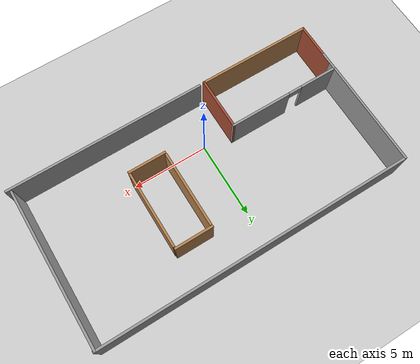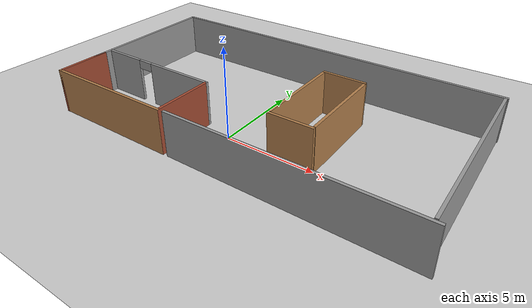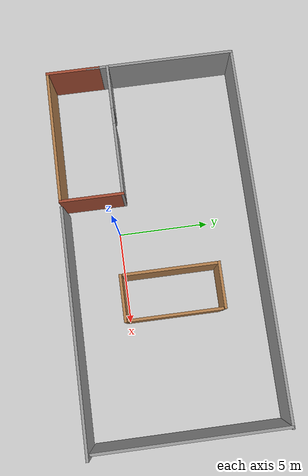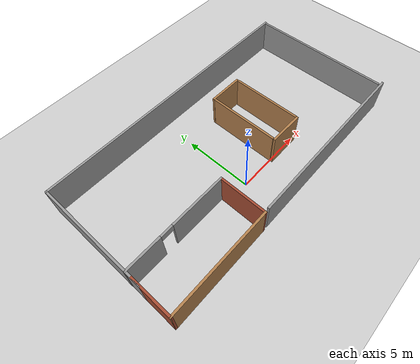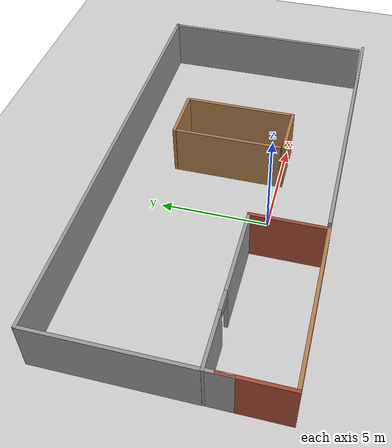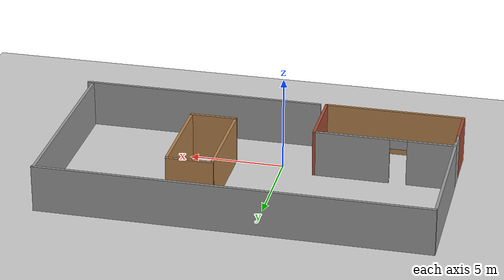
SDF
<sdf version="1.7">
 <world name="default">
  <light name="sun" type="directional">
   <pose>0 0 10 0 -0 0</pose>
   <diffuse>0.8 0.8 0.8 1</diffuse>
   <specular>0.2 0.2 0.2 1</specular>
   <attenuation>
    <range>1000</range>
    <constant>0.9</constant>
    <linear>0.01</linear>
    <quadratic>0.001</quadratic>
   </attenuation>
   <direction>-0.5 0.1 -0.9</direction>
   <spot><inner_angle>0</inner_angle><outer_angle>0</outer_angle><falloff>0</falloff></spot>
  </light>
  <gravity>0 0 -9.8</gravity>
  <magnetic_field>6e-06 2.3e-05 -4.2e-05</magnetic_field>
  <atmosphere type="adiabatic"/>
  <physics type="ode">
   <max_step_size>0.001</max_step_size>
   <real_time_factor>1</real_time_factor>
   <real_time_update_rate>1000</real_time_update_rate>
  </physics>
  <scene><ambient>0.4 0.4 0.4 1</ambient><background>0.7 0.7 0.7 1</background><shadows>1</shadows></scene>
  <spherical_coordinates>
   <surface_model>EARTH_WGS84</surface_model>
   <latitude_deg>0</latitude_deg>
   <longitude_deg>0</longitude_deg>
   <elevation>0</elevation>
   <heading_deg>0</heading_deg>
  </spherical_coordinates>
  <audio><device>default</device></audio>
  <model name="ground_plane">
   <static>1</static>
   <link name="link">
    <collision name="collision">
     <geometry><plane><normal>0 0 1</normal><size>100 100</size></plane></geometry>
     <surface><friction><ode><mu>100</mu><mu2>50</mu2></ode></friction></surface>
    </collision>
    <visual name="visual">
     <cast_shadows>0</cast_shadows>
     <geometry><plane><normal>0 0 1</normal><size>100 100</size></plane></geometry>
     <material>
      <script><uri>file://media/materials/scripts/gazebo.material</uri><name>Gazebo/Grey</name></script>
     </material>
    </visual>
   </link>
  </model>
  <model name="mini_world.world">
   <link name="Wall_1">
    <pose>2.34987 7.59073 0 0 -0 1.5708</pose>
    <visual name="Wall_1_Visual">
     <pose>0 0 1.25 0 -0 0</pose>
     <geometry><box><size>5 0.15 2.5</size></box></geometry>
     <material>
      <script><uri>file://media/materials/scripts/gazebo.material</uri><name>Gazebo/Wood</name></script>
      <ambient>1 1 1 1</ambient>
      <shader type="pixel"/>
     </material>
     <meta><layer>0</layer></meta>
    </visual>
    <collision name="Wall_1_Collision">
     <pose>0 0 1.25 0 -0 0</pose>
     <geometry><box><size>5 0.15 2.5</size></box></geometry>
     <surface>
      <friction>
       <ode><mu>1</mu><mu2>1</mu2><fdir1>0 0 0</fdir1><slip1>0</slip1><slip2>0</slip2></ode>
       <torsional>
        <coefficient>1</coefficient>
        <patch_radius>0</patch_radius>
        <surface_radius>0</surface_radius>
        <use_patch_radius>1</use_patch_radius>
        <ode><slip>0</slip></ode>
       </torsional>
      </friction>
      <bounce><restitution_coefficient>0</restitution_coefficient><threshold>1e+06</threshold></bounce>
      <contact>
       <collide_without_contact>0</collide_without_contact>
       <collide_without_contact_bitmask>1</collide_without_contact_bitmask>
       <collide_bitmask>1</collide_bitmask>
       <ode>
        <soft_cfm>0</soft_cfm>
        <soft_erp>0.2</soft_erp>
        <kp>1e+13</kp>
        <kd>1</kd>
        <max_vel>0.01</max_vel>
        <min_depth>0</min_depth>
       </ode>
       <bullet>
        <split_impulse>1</split_impulse>
        <split_impulse_penetration_threshold>-0.01</split_impulse_penetration_threshold>
        <soft_cfm>0</soft_cfm>
        <soft_erp>0.2</soft_erp>
        <kp>1e+13</kp>
        <kd>1</kd>
       </bullet>
      </contact>
     </surface>
    </collision>
   </link>
   <link name="Wall_2">
    <pose>1.16158 4.99653 0 0 -0 3.14159</pose>
    <visual name="Wall_2_Visual">
     <pose>0 0 1.25 0 -0 0</pose>
     <geometry><box><size>2.5 0.15 2.5</size></box></geometry>
     <material>
      <script><uri>file://media/materials/scripts/gazebo.material</uri><name>Gazebo/Wood</name></script>
      <ambient>1 1 1 1</ambient>
      <shader type="pixel"/>
     </material>
     <meta><layer>0</layer></meta>
    </visual>
    <collision name="Wall_2_Collision">
     <pose>0 0 1.25 0 -0 0</pose>
     <geometry><box><size>2.5 0.15 2.5</size></box></geometry>
     <surface>
      <friction>
       <ode><mu>1</mu><mu2>1</mu2><fdir1>0 0 0</fdir1><slip1>0</slip1><slip2>0</slip2></ode>
       <torsional>
        <coefficient>1</coefficient>
        <patch_radius>0</patch_radius>
        <surface_radius>0</surface_radius>
        <use_patch_radius>1</use_patch_radius>
        <ode><slip>0</slip></ode>
       </torsional>
      </friction>
      <bounce><restitution_coefficient>0</restitution_coefficient><threshold>1e+06</threshold></bounce>
      <contact>
       <collide_without_contact>0</collide_without_contact>
       <collide_without_contact_bitmask>1</collide_without_contact_bitmask>
       <collide_bitmask>1</collide_bitmask>
       <ode>
        <soft_cfm>0</soft_cfm>
        <soft_erp>0.2</soft_erp>
        <kp>1e+13</kp>
        <kd>1</kd>
        <max_vel>0.01</max_vel>
        <min_depth>0</min_depth>
       </ode>
       <bullet>
        <split_impulse>1</split_impulse>
        <split_impulse_penetration_threshold>-0.01</split_impulse_penetration_threshold>
        <soft_cfm>0</soft_cfm>
        <soft_erp>0.2</soft_erp>
        <kp>1e+13</kp>
        <kd>1</kd>
       </bullet>
      </contact>
     </surface>
    </collision>
   </link>
   <link name="Wall_2_clone">
    <pose>1.14067 10.1966 0 0 -0 3.14159</pose>
    <visual name="Wall_2_Visual">
     <pose>0 0 1.25 0 -0 0</pose>
     <geometry><box><size>2.5 0.15 2.5</size></box></geometry>
     <material>
      <script><uri>file://media/materials/scripts/gazebo.material</uri><name>Gazebo/Wood</name></script>
      <ambient>1 1 1 1</ambient>
      <shader type="pixel"/>
     </material>
     <meta><layer>0</layer></meta>
    </visual>
    <collision name="Wall_2_Collision">
     <pose>0 0 1.25 0 -0 0</pose>
     <geometry><box><size>2.5 0.15 2.5</size></box></geometry>
     <surface>
      <friction>
       <ode><mu>1</mu><mu2>1</mu2><fdir1>0 0 0</fdir1><slip1>0</slip1><slip2>0</slip2></ode>
       <torsional>
        <coefficient>1</coefficient>
        <patch_radius>0</patch_radius>
        <surface_radius>0</surface_radius>
        <use_patch_radius>1</use_patch_radius>
        <ode><slip>0</slip></ode>
       </torsional>
      </friction>
      <bounce><restitution_coefficient>0</restitution_coefficient><threshold>1e+06</threshold></bounce>
      <contact>
       <collide_without_contact>0</collide_without_contact>
       <collide_without_contact_bitmask>1</collide_without_contact_bitmask>
       <collide_bitmask>1</collide_bitmask>
       <ode>
        <soft_cfm>0</soft_cfm>
        <soft_erp>0.2</soft_erp>
        <kp>1e+13</kp>
        <kd>1</kd>
        <max_vel>0.01</max_vel>
        <min_depth>0</min_depth>
       </ode>
       <bullet>
        <split_impulse>1</split_impulse>
        <split_impulse_penetration_threshold>-0.01</split_impulse_penetration_threshold>
        <soft_cfm>0</soft_cfm>
        <soft_erp>0.2</soft_erp>
        <kp>1e+13</kp>
        <kd>1</kd>
       </bullet>
      </contact>
     </surface>
    </collision>
   </link>
   <link name="Wall_3">
    <pose>-0.034588 7.60858 0 0 0 -1.5708</pose>
    <visual name="Wall_3_Visual">
     <pose>0 0 1.25 0 -0 0</pose>
     <geometry><box><size>5 0.15 2.5</size></box></geometry>
     <material>
      <script><uri>file://media/materials/scripts/gazebo.material</uri><name>Gazebo/Wood</name></script>
      <ambient>1 1 1 1</ambient>
      <shader type="pixel"/>
     </material>
     <meta><layer>0</layer></meta>
    </visual>
    <collision name="Wall_3_Collision">
     <pose>0 0 1.25 0 -0 0</pose>
     <geometry><box><size>5 0.15 2.5</size></box></geometry>
     <surface>
      <friction>
       <ode><mu>1</mu><mu2>1</mu2><fdir1>0 0 0</fdir1><slip1>0</slip1><slip2>0</slip2></ode>
       <torsional>
        <coefficient>1</coefficient>
        <patch_radius>0</patch_radius>
        <surface_radius>0</surface_radius>
        <use_patch_radius>1</use_patch_radius>
        <ode><slip>0</slip></ode>
       </torsional>
      </friction>
      <bounce><restitution_coefficient>0</restitution_coefficient><threshold>1e+06</threshold></bounce>
      <contact>
       <collide_without_contact>0</collide_without_contact>
       <collide_without_contact_bitmask>1</collide_without_contact_bitmask>
       <collide_bitmask>1</collide_bitmask>
       <ode>
        <soft_cfm>0</soft_cfm>
        <soft_erp>0.2</soft_erp>
        <kp>1e+13</kp>
        <kd>1</kd>
        <max_vel>0.01</max_vel>
        <min_depth>0</min_depth>
       </ode>
       <bullet>
        <split_impulse>1</split_impulse>
        <split_impulse_penetration_threshold>-0.01</split_impulse_penetration_threshold>
        <soft_cfm>0</soft_cfm>
        <soft_erp>0.2</soft_erp>
        <kp>1e+13</kp>
        <kd>1</kd>
       </bullet>
      </contact>
     </surface>
    </collision>
   </link>
   <link name="Wall_31">
    <pose>-1.54186 12.6226 0 0 -0 0</pose>
    <inertial>
     <mass>1</mass>
     <inertia><ixx>1</ixx><ixy>0</ixy><ixz>0</ixz><iyy>1</iyy><iyz>0</iyz><izz>1</izz></inertia>
    </inertial>
    <visual name="Wall_31_Visual">
     <pose>0 0 1.25 0 -0 0</pose>
     <geometry><box><size>20.5 0.15 2.5</size></box></geometry>
     <material>
      <script><uri>file://media/materials/scripts/gazebo.material</uri><name>Gazebo/Grey</name></script>
      <ambient>1 1 1 1</ambient>
      <shader type="pixel"><normal_map>__default__</normal_map></shader>
      <diffuse>0.7 0.7 0.7 1</diffuse>
      <specular>0.01 0.01 0.01 1</specular>
      <emissive>0 0 0 1</emissive>
     </material>
     <meta><layer>0</layer></meta>
    </visual>
    <collision name="Wall_31_Collision">
     <pose>0 0 1.25 0 -0 0</pose>
     <geometry><box><size>20.5 0.15 2.5</size></box></geometry>
     <surface>
      <friction>
       <ode><mu>1</mu><mu2>1</mu2><fdir1>0 0 0</fdir1><slip1>0</slip1><slip2>0</slip2></ode>
       <torsional>
        <coefficient>1</coefficient>
        <patch_radius>0</patch_radius>
        <surface_radius>0</surface_radius>
        <use_patch_radius>1</use_patch_radius>
        <ode><slip>0</slip></ode>
       </torsional>
      </friction>
      <bounce><restitution_coefficient>0</restitution_coefficient><threshold>1e+06</threshold></bounce>
      <contact>
       <collide_without_contact>0</collide_without_contact>
       <collide_without_contact_bitmask>1</collide_without_contact_bitmask>
       <collide_bitmask>1</collide_bitmask>
       <ode>
        <soft_cfm>0</soft_cfm>
        <soft_erp>0.2</soft_erp>
        <kp>1e+13</kp>
        <kd>1</kd>
        <max_vel>0.01</max_vel>
        <min_depth>0</min_depth>
       </ode>
       <bullet>
        <split_impulse>1</split_impulse>
        <split_impulse_penetration_threshold>-0.01</split_impulse_penetration_threshold>
        <soft_cfm>0</soft_cfm>
        <soft_erp>0.2</soft_erp>
        <kp>1e+13</kp>
        <kd>1</kd>
       </bullet>
      </contact>
     </surface>
    </collision>
   </link>
   <link name="Wall_31_clone">
    <pose>2.41702 2.32533 0 0 -0 0</pose>
    <inertial>
     <mass>1</mass>
     <inertia><ixx>1</ixx><ixy>0</ixy><ixz>0</ixz><iyy>1</iyy><iyz>0</iyz><izz>1</izz></inertia>
    </inertial>
    <visual name="Wall_31_Visual">
     <pose>0 0 1.25 0 -0 0</pose>
     <geometry><box><size>13 0.15 2.5</size></box></geometry>
     <material>
      <script><uri>file://media/materials/scripts/gazebo.material</uri><name>Gazebo/Grey</name></script>
      <ambient>1 1 1 1</ambient>
      <shader type="pixel"><normal_map>__default__</normal_map></shader>
      <diffuse>0.7 0.7 0.7 1</diffuse>
      <specular>0.01 0.01 0.01 1</specular>
      <emissive>0 0 0 1</emissive>
     </material>
     <meta><layer>0</layer></meta>
    </visual>
    <collision name="Wall_31_Collision">
     <pose>0 0 1.25 0 -0 0</pose>
     <geometry><box><size>13 0.15 2.5</size></box></geometry>
     <surface>
      <friction>
       <ode><mu>1</mu><mu2>1</mu2><fdir1>0 0 0</fdir1><slip1>0</slip1><slip2>0</slip2></ode>
       <torsional>
        <coefficient>1</coefficient>
        <patch_radius>0</patch_radius>
        <surface_radius>0</surface_radius>
        <use_patch_radius>1</use_patch_radius>
        <ode><slip>0</slip></ode>
       </torsional>
      </friction>
      <bounce><restitution_coefficient>0</restitution_coefficient><threshold>1e+06</threshold></bounce>
      <contact>
       <collide_without_contact>0</collide_without_contact>
       <collide_without_contact_bitmask>1</collide_without_contact_bitmask>
       <collide_bitmask>1</collide_bitmask>
       <ode>
        <soft_cfm>0</soft_cfm>
        <soft_erp>0.2</soft_erp>
        <kp>1e+13</kp>
        <kd>1</kd>
        <max_vel>0.01</max_vel>
        <min_depth>0</min_depth>
       </ode>
       <bullet>
        <split_impulse>1</split_impulse>
        <split_impulse_penetration_threshold>-0.01</split_impulse_penetration_threshold>
        <soft_cfm>0</soft_cfm>
        <soft_erp>0.2</soft_erp>
        <kp>1e+13</kp>
        <kd>1</kd>
       </bullet>
      </contact>
     </surface>
    </collision>
   </link>
   <link name="Wall_32">
    <pose>-11.7375 9.17611 0 0 -0 1.5708</pose>
    <inertial>
     <mass>1</mass>
     <inertia><ixx>1</ixx><ixy>0</ixy><ixz>0</ixz><iyy>1</iyy><iyz>0</iyz><izz>1</izz></inertia>
    </inertial>
    <visual name="Wall_32_Visual">
     <pose>0 0 1.25 0 -0 0</pose>
     <geometry><box><size>7 0.15 2.5</size></box></geometry>
     <material>
      <script><uri>file://media/materials/scripts/gazebo.material</uri><name>Gazebo/Grey</name></script>
      <ambient>1 1 1 1</ambient>
      <shader type="pixel"><normal_map>__default__</normal_map></shader>
      <diffuse>0.7 0.7 0.7 1</diffuse>
      <specular>0.01 0.01 0.01 1</specular>
      <emissive>0 0 0 1</emissive>
     </material>
     <meta><layer>0</layer></meta>
    </visual>
    <collision name="Wall_32_Collision">
     <pose>0 0 1.25 0 -0 0</pose>
     <geometry><box><size>7 0.15 2.5</size></box></geometry>
     <surface>
      <friction>
       <ode><mu>1</mu><mu2>1</mu2><fdir1>0 0 0</fdir1><slip1>0</slip1><slip2>0</slip2></ode>
       <torsional>
        <coefficient>1</coefficient>
        <patch_radius>0</patch_radius>
        <surface_radius>0</surface_radius>
        <use_patch_radius>1</use_patch_radius>
        <ode><slip>0</slip></ode>
       </torsional>
      </friction>
      <bounce><restitution_coefficient>0</restitution_coefficient><threshold>1e+06</threshold></bounce>
      <contact>
       <collide_without_contact>0</collide_without_contact>
       <collide_without_contact_bitmask>1</collide_without_contact_bitmask>
       <collide_bitmask>1</collide_bitmask>
       <ode>
        <soft_cfm>0</soft_cfm>
        <soft_erp>0.2</soft_erp>
        <kp>1e+13</kp>
        <kd>1</kd>
        <max_vel>0.01</max_vel>
        <min_depth>0</min_depth>
       </ode>
       <bullet>
        <split_impulse>1</split_impulse>
        <split_impulse_penetration_threshold>-0.01</split_impulse_penetration_threshold>
        <soft_cfm>0</soft_cfm>
        <soft_erp>0.2</soft_erp>
        <kp>1e+13</kp>
        <kd>1</kd>
       </bullet>
      </contact>
     </surface>
    </collision>
   </link>
   <link name="Wall_32_clone">
    <pose>8.58939 7.56045 0 0 -0 1.5708</pose>
    <inertial>
     <mass>1</mass>
     <inertia><ixx>1</ixx><ixy>0</ixy><ixz>0</ixz><iyy>1</iyy><iyz>0</iyz><izz>1</izz></inertia>
    </inertial>
    <visual name="Wall_32_Visual">
     <pose>0 0 1.25 0 -0 0</pose>
     <geometry><box><size>10.2 0.15 2.5</size></box></geometry>
     <material>
      <script><uri>file://media/materials/scripts/gazebo.material</uri><name>Gazebo/Grey</name></script>
      <ambient>1 1 1 1</ambient>
      <shader type="pixel"><normal_map>__default__</normal_map></shader>
      <diffuse>0.7 0.7 0.7 1</diffuse>
      <specular>0.01 0.01 0.01 1</specular>
      <emissive>0 0 0 1</emissive>
     </material>
     <meta><layer>0</layer></meta>
    </visual>
    <collision name="Wall_32_Collision">
     <pose>0 0 1.25 0 -0 0</pose>
     <geometry><box><size>10.2 0.15 2.5</size></box></geometry>
     <surface>
      <friction>
       <ode><mu>1</mu><mu2>1</mu2><fdir1>0 0 0</fdir1><slip1>0</slip1><slip2>0</slip2></ode>
       <torsional>
        <coefficient>1</coefficient>
        <patch_radius>0</patch_radius>
        <surface_radius>0</surface_radius>
        <use_patch_radius>1</use_patch_radius>
        <ode><slip>0</slip></ode>
       </torsional>
      </friction>
      <bounce><restitution_coefficient>0</restitution_coefficient><threshold>1e+06</threshold></bounce>
      <contact>
       <collide_without_contact>0</collide_without_contact>
       <collide_without_contact_bitmask>1</collide_without_contact_bitmask>
       <collide_bitmask>1</collide_bitmask>
       <ode>
        <soft_cfm>0</soft_cfm>
        <soft_erp>0.2</soft_erp>
        <kp>1e+13</kp>
        <kd>1</kd>
        <max_vel>0.01</max_vel>
        <min_depth>0</min_depth>
       </ode>
       <bullet>
        <split_impulse>1</split_impulse>
        <split_impulse_penetration_threshold>-0.01</split_impulse_penetration_threshold>
        <soft_cfm>0</soft_cfm>
        <soft_erp>0.2</soft_erp>
        <kp>1e+13</kp>
        <kd>1</kd>
       </bullet>
      </contact>
     </surface>
    </collision>
   </link>
   <link name="Wall_5">
    <pose>-11.7266 3.72123 0 0 0 -1.5708</pose>
    <visual name="Wall_5_Visual">
     <pose>0 0 1.25 0 -0 0</pose>
     <geometry><box><size>3 0.15 2.5</size></box></geometry>
     <material>
      <script><uri>file://media/materials/scripts/gazebo.material</uri><name>Gazebo/Bricks</name></script>
      <ambient>1 1 1 1</ambient>
      <shader type="pixel"/>
     </material>
     <meta><layer>0</layer></meta>
    </visual>
    <collision name="Wall_5_Collision">
     <pose>0 0 1.25 0 -0 0</pose>
     <geometry><box><size>3 0.15 2.5</size></box></geometry>
     <surface>
      <friction>
       <ode><mu>1</mu><mu2>1</mu2><fdir1>0 0 0</fdir1><slip1>0</slip1><slip2>0</slip2></ode>
       <torsional>
        <coefficient>1</coefficient>
        <patch_radius>0</patch_radius>
        <surface_radius>0</surface_radius>
        <use_patch_radius>1</use_patch_radius>
        <ode><slip>0</slip></ode>
       </torsional>
      </friction>
      <bounce><restitution_coefficient>0</restitution_coefficient><threshold>1e+06</threshold></bounce>
      <contact>
       <collide_without_contact>0</collide_without_contact>
       <collide_without_contact_bitmask>1</collide_without_contact_bitmask>
       <collide_bitmask>1</collide_bitmask>
       <ode>
        <soft_cfm>0</soft_cfm>
        <soft_erp>0.2</soft_erp>
        <kp>1e+13</kp>
        <kd>1</kd>
        <max_vel>0.01</max_vel>
        <min_depth>0</min_depth>
       </ode>
       <bullet>
        <split_impulse>1</split_impulse>
        <split_impulse_penetration_threshold>-0.01</split_impulse_penetration_threshold>
        <soft_cfm>0</soft_cfm>
        <soft_erp>0.2</soft_erp>
        <kp>1e+13</kp>
        <kd>1</kd>
       </bullet>
      </contact>
     </surface>
    </collision>
   </link>
   <link name="Wall_6">
    <pose>-8.0516 2.29623 0 0 -0 0</pose>
    <visual name="Wall_6_Visual">
     <pose>0 0 1.25 0 -0 0</pose>
     <geometry><box><size>7.5 0.15 2.5</size></box></geometry>
     <material>
      <script><uri>file://media/materials/scripts/gazebo.material</uri><name>Gazebo/Wood</name></script>
      <ambient>1 1 1 1</ambient>
      <shader type="pixel"/>
     </material>
     <meta><layer>0</layer></meta>
    </visual>
    <collision name="Wall_6_Collision">
     <pose>0 0 1.25 0 -0 0</pose>
     <geometry><box><size>7.5 0.15 2.5</size></box></geometry>
     <surface>
      <friction>
       <ode><mu>1</mu><mu2>1</mu2><fdir1>0 0 0</fdir1><slip1>0</slip1><slip2>0</slip2></ode>
       <torsional>
        <coefficient>1</coefficient>
        <patch_radius>0</patch_radius>
        <surface_radius>0</surface_radius>
        <use_patch_radius>1</use_patch_radius>
        <ode><slip>0</slip></ode>
       </torsional>
      </friction>
      <bounce><restitution_coefficient>0</restitution_coefficient><threshold>1e+06</threshold></bounce>
      <contact>
       <collide_without_contact>0</collide_without_contact>
       <collide_without_contact_bitmask>1</collide_without_contact_bitmask>
       <collide_bitmask>1</collide_bitmask>
       <ode>
        <soft_cfm>0</soft_cfm>
        <soft_erp>0.2</soft_erp>
        <kp>1e+13</kp>
        <kd>1</kd>
        <max_vel>0.01</max_vel>
        <min_depth>0</min_depth>
       </ode>
       <bullet>
        <split_impulse>1</split_impulse>
        <split_impulse_penetration_threshold>-0.01</split_impulse_penetration_threshold>
        <soft_cfm>0</soft_cfm>
        <soft_erp>0.2</soft_erp>
        <kp>1e+13</kp>
        <kd>1</kd>
       </bullet>
      </contact>
     </surface>
    </collision>
   </link>
   <link name="Wall_7">
    <pose>-4.3766 3.97123 0 0 -0 1.5708</pose>
    <visual name="Wall_7_Visual">
     <pose>0 0 1.25 0 -0 0</pose>
     <geometry><box><size>3.5 0.15 2.5</size></box></geometry>
     <material>
      <script><uri>file://media/materials/scripts/gazebo.material</uri><name>Gazebo/Bricks</name></script>
      <ambient>1 1 1 1</ambient>
      <shader type="pixel"/>
     </material>
     <meta><layer>0</layer></meta>
    </visual>
    <collision name="Wall_7_Collision">
     <pose>0 0 1.25 0 -0 0</pose>
     <geometry><box><size>3.5 0.15 2.5</size></box></geometry>
     <surface>
      <friction>
       <ode><mu>1</mu><mu2>1</mu2><fdir1>0 0 0</fdir1><slip1>0</slip1><slip2>0</slip2></ode>
       <torsional>
        <coefficient>1</coefficient>
        <patch_radius>0</patch_radius>
        <surface_radius>0</surface_radius>
        <use_patch_radius>1</use_patch_radius>
        <ode><slip>0</slip></ode>
       </torsional>
      </friction>
      <bounce><restitution_coefficient>0</restitution_coefficient><threshold>1e+06</threshold></bounce>
      <contact>
       <collide_without_contact>0</collide_without_contact>
       <collide_without_contact_bitmask>1</collide_without_contact_bitmask>
       <collide_bitmask>1</collide_bitmask>
       <ode>
        <soft_cfm>0</soft_cfm>
        <soft_erp>0.2</soft_erp>
        <kp>1e+13</kp>
        <kd>1</kd>
        <max_vel>0.01</max_vel>
        <min_depth>0</min_depth>
       </ode>
       <bullet>
        <split_impulse>1</split_impulse>
        <split_impulse_penetration_threshold>-0.01</split_impulse_penetration_threshold>
        <soft_cfm>0</soft_cfm>
        <soft_erp>0.2</soft_erp>
        <kp>1e+13</kp>
        <kd>1</kd>
       </bullet>
      </contact>
     </surface>
    </collision>
   </link>
   <link name="Wall_8">
    <pose>-8.0516 5.64623 0 0 -0 3.14159</pose>
    <visual name="Wall_8_Visual_1">
     <pose>2.47655 0 1.25 0 -0 0</pose>
     <geometry><box><size>2.54691 0.15 2.5</size></box></geometry>
     <material>
      <script><uri>file://media/materials/scripts/gazebo.material</uri><name>Gazebo/Grey</name></script>
      <ambient>1 1 1 1</ambient>
      <shader type="pixel"/>
     </material>
     <meta><layer>0</layer></meta>
    </visual>
    <visual name="Wall_8_Visual_0">
     <pose>-1.72345 0 1.25 0 -0 0</pose>
     <geometry><box><size>4.05309 0.15 2.5</size></box></geometry>
     <material>
      <script><uri>file://media/materials/scripts/gazebo.material</uri><name>Gazebo/Grey</name></script>
      <ambient>1 1 1 1</ambient>
      <shader type="pixel"/>
     </material>
     <meta><layer>0</layer></meta>
    </visual>
    <visual name="Wall_8_Visual_2">
     <pose>0.753095 0 2.25 0 -0 0</pose>
     <geometry><box><size>0.9 0.15 0.5</size></box></geometry>
     <material>
      <script><uri>file://media/materials/scripts/gazebo.material</uri><name>Gazebo/Grey</name></script>
      <ambient>1 1 1 1</ambient>
      <shader type="pixel"/>
     </material>
     <meta><layer>0</layer></meta>
    </visual>
    <collision name="Wall_8_Collision_0">
     <pose>-1.72345 0 1.25 0 -0 0</pose>
     <geometry><box><size>4.05309 0.15 2.5</size></box></geometry>
     <surface>
      <friction>
       <ode><mu>1</mu><mu2>1</mu2><fdir1>0 0 0</fdir1><slip1>0</slip1><slip2>0</slip2></ode>
       <torsional>
        <coefficient>1</coefficient>
        <patch_radius>0</patch_radius>
        <surface_radius>0</surface_radius>
        <use_patch_radius>1</use_patch_radius>
        <ode><slip>0</slip></ode>
       </torsional>
      </friction>
      <bounce><restitution_coefficient>0</restitution_coefficient><threshold>1e+06</threshold></bounce>
      <contact>
       <collide_without_contact>0</collide_without_contact>
       <collide_without_contact_bitmask>1</collide_without_contact_bitmask>
       <collide_bitmask>1</collide_bitmask>
       <ode>
        <soft_cfm>0</soft_cfm>
        <soft_erp>0.2</soft_erp>
        <kp>1e+13</kp>
        <kd>1</kd>
        <max_vel>0.01</max_vel>
        <min_depth>0</min_depth>
       </ode>
       <bullet>
        <split_impulse>1</split_impulse>
        <split_impulse_penetration_threshold>-0.01</split_impulse_penetration_threshold>
        <soft_cfm>0</soft_cfm>
        <soft_erp>0.2</soft_erp>
        <kp>1e+13</kp>
        <kd>1</kd>
       </bullet>
      </contact>
     </surface>
    </collision>
    <collision name="Wall_8_Collision_2">
     <pose>0.753095 0 2.25 0 -0 0</pose>
     <geometry><box><size>0.9 0.15 0.5</size></box></geometry>
     <surface>
      <friction>
       <ode><mu>1</mu><mu2>1</mu2><fdir1>0 0 0</fdir1><slip1>0</slip1><slip2>0</slip2></ode>
       <torsional>
        <coefficient>1</coefficient>
        <patch_radius>0</patch_radius>
        <surface_radius>0</surface_radius>
        <use_patch_radius>1</use_patch_radius>
        <ode><slip>0</slip></ode>
       </torsional>
      </friction>
      <bounce><restitution_coefficient>0</restitution_coefficient><threshold>1e+06</threshold></bounce>
      <contact>
       <collide_without_contact>0</collide_without_contact>
       <collide_without_contact_bitmask>1</collide_without_contact_bitmask>
       <collide_bitmask>1</collide_bitmask>
       <ode>
        <soft_cfm>0</soft_cfm>
        <soft_erp>0.2</soft_erp>
        <kp>1e+13</kp>
        <kd>1</kd>
        <max_vel>0.01</max_vel>
        <min_depth>0</min_depth>
       </ode>
       <bullet>
        <split_impulse>1</split_impulse>
        <split_impulse_penetration_threshold>-0.01</split_impulse_penetration_threshold>
        <soft_cfm>0</soft_cfm>
        <soft_erp>0.2</soft_erp>
        <kp>1e+13</kp>
        <kd>1</kd>
       </bullet>
      </contact>
     </surface>
    </collision>
    <collision name="Wall_8_Collision_1">
     <pose>2.47655 0 1.25 0 -0 0</pose>
     <geometry><box><size>2.54691 0.15 2.5</size></box></geometry>
     <surface>
      <friction>
       <ode><mu>1</mu><mu2>1</mu2><fdir1>0 0 0</fdir1><slip1>0</slip1><slip2>0</slip2></ode>
       <torsional>
        <coefficient>1</coefficient>
        <patch_radius>0</patch_radius>
        <surface_radius>0</surface_radius>
        <use_patch_radius>1</use_patch_radius>
        <ode><slip>0</slip></ode>
       </torsional>
      </friction>
      <bounce><restitution_coefficient>0</restitution_coefficient><threshold>1e+06</threshold></bounce>
      <contact>
       <collide_without_contact>0</collide_without_contact>
       <collide_without_contact_bitmask>1</collide_without_contact_bitmask>
       <collide_bitmask>1</collide_bitmask>
       <ode>
        <soft_cfm>0</soft_cfm>
        <soft_erp>0.2</soft_erp>
        <kp>1e+13</kp>
        <kd>1</kd>
        <max_vel>0.01</max_vel>
        <min_depth>0</min_depth>
       </ode>
       <bullet>
        <split_impulse>1</split_impulse>
        <split_impulse_penetration_threshold>-0.01</split_impulse_penetration_threshold>
        <soft_cfm>0</soft_cfm>
        <soft_erp>0.2</soft_erp>
        <kp>1e+13</kp>
        <kd>1</kd>
       </bullet>
      </contact>
     </surface>
    </collision>
   </link>
   <link name="Wall_9">
    <pose>-11.7266 5.09623 0 0 0 -1.5708</pose>
    <visual name="Wall_9_Visual">
     <pose>0 0 1.25 0 -0 0</pose>
     <geometry><box><size>1.25 0.15 2.5</size></box></geometry>
     <material>
      <script><uri>file://media/materials/scripts/gazebo.material</uri><name>Gazebo/Grey</name></script>
      <ambient>1 1 1 1</ambient>
      <shader type="pixel"/>
     </material>
     <meta><layer>0</layer></meta>
    </visual>
    <collision name="Wall_9_Collision">
     <pose>0 0 1.25 0 -0 0</pose>
     <geometry><box><size>1.25 0.15 2.5</size></box></geometry>
     <surface>
      <friction>
       <ode><mu>1</mu><mu2>1</mu2><fdir1>0 0 0</fdir1><slip1>0</slip1><slip2>0</slip2></ode>
       <torsional>
        <coefficient>1</coefficient>
        <patch_radius>0</patch_radius>
        <surface_radius>0</surface_radius>
        <use_patch_radius>1</use_patch_radius>
        <ode><slip>0</slip></ode>
       </torsional>
      </friction>
      <bounce><restitution_coefficient>0</restitution_coefficient><threshold>1e+06</threshold></bounce>
      <contact>
       <collide_without_contact>0</collide_without_contact>
       <collide_without_contact_bitmask>1</collide_without_contact_bitmask>
       <collide_bitmask>1</collide_bitmask>
       <ode>
        <soft_cfm>0</soft_cfm>
        <soft_erp>0.2</soft_erp>
        <kp>1e+13</kp>
        <kd>1</kd>
        <max_vel>0.01</max_vel>
        <min_depth>0</min_depth>
       </ode>
       <bullet>
        <split_impulse>1</split_impulse>
        <split_impulse_penetration_threshold>-0.01</split_impulse_penetration_threshold>
        <soft_cfm>0</soft_cfm>
        <soft_erp>0.2</soft_erp>
        <kp>1e+13</kp>
        <kd>1</kd>
       </bullet>
      </contact>
     </surface>
    </collision>
   </link>
   <static>1</static>
   <pose>2.62892 -5.12112 0 0 -0 0</pose>
  </model>
 </world>
</sdf>
